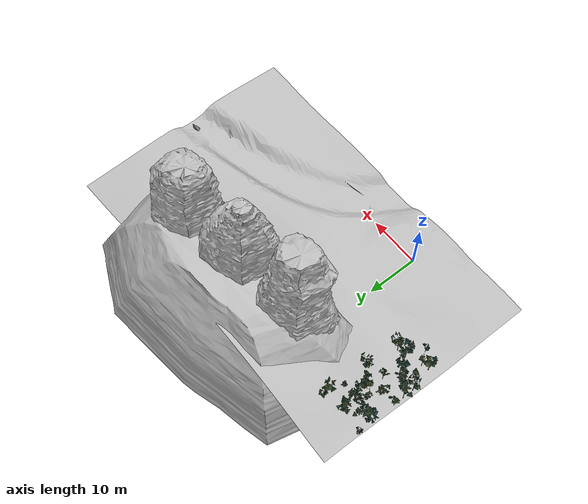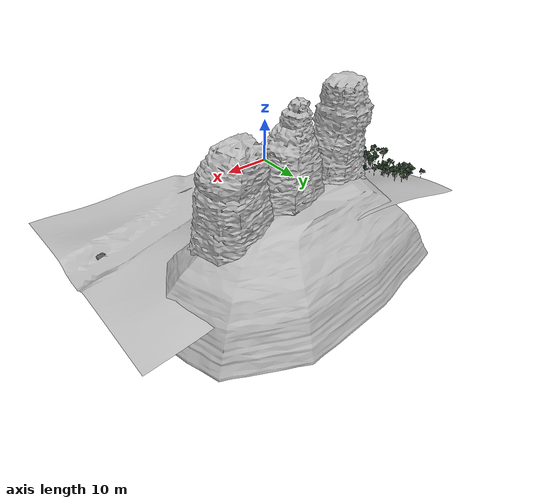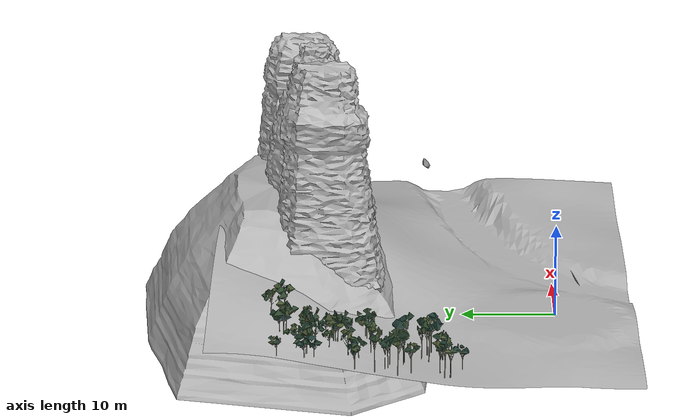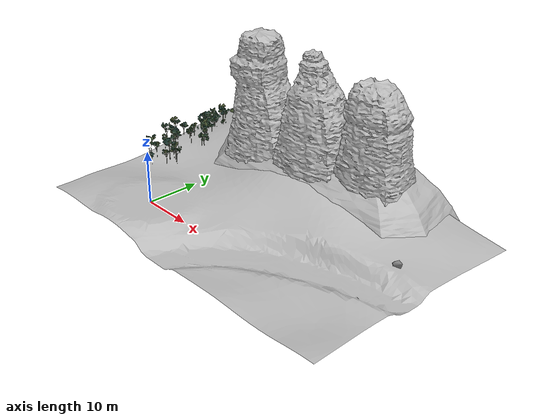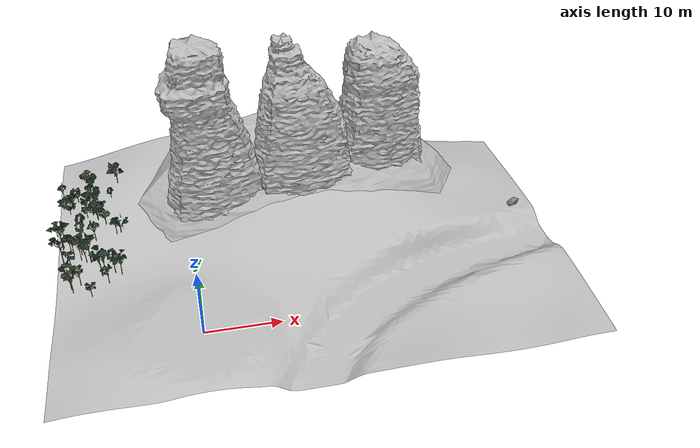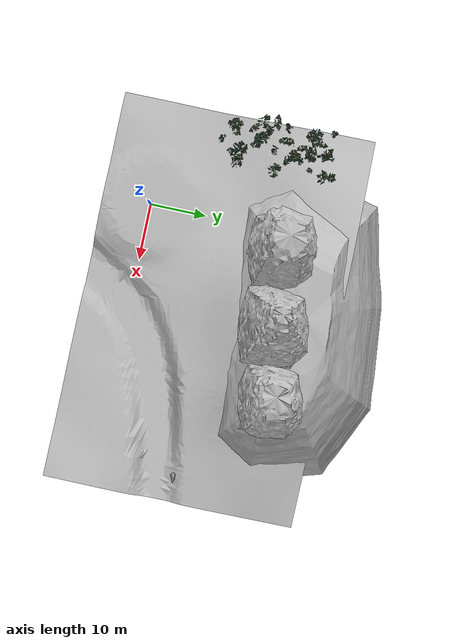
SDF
<sdf version="1.8">
 <model name="blue_mountains">
  <static>true</static>
  <link name="landscape_0">
   <visual name="visual">
    <geometry>
     <mesh><uri>model://blue_mountains/meshes/0000_jamison_valley_forest_terrain.dae</uri></mesh>
    </geometry>
    <cast_shadows>false</cast_shadows>
   </visual>
   <collision name="collision">
    <geometry>
     <mesh><uri>model://blue_mountains/meshes/0000_jamison_valley_forest_terrain.dae</uri></mesh>
    </geometry>
   </collision>
  </link>
  <link name="landscape_1">
   <visual name="visual">
    <geometry>
     <mesh><uri>model://blue_mountains/meshes/0001_01_meehni_irregular_stepped_summit.dae</uri></mesh>
    </geometry>
    <cast_shadows>false</cast_shadows>
   </visual>
   <collision name="collision">
    <geometry>
     <mesh><uri>model://blue_mountains/meshes/0001_01_meehni_irregular_stepped_summit.dae</uri></mesh>
    </geometry>
   </collision>
  </link>
  <link name="landscape_2">
   <visual name="visual">
    <geometry>
     <mesh><uri>model://blue_mountains/meshes/0002_02_wimlah_tapered_fractured_buttress.dae</uri></mesh>
    </geometry>
    <cast_shadows>false</cast_shadows>
   </visual>
   <collision name="collision">
    <geometry>
     <mesh><uri>model://blue_mountains/meshes/0002_02_wimlah_tapered_fractured_buttress.dae</uri></mesh>
    </geometry>
   </collision>
  </link>
  <link name="landscape_3">
   <visual name="visual">
    <geometry>
     <mesh><uri>model://blue_mountains/meshes/0003_03_gunnedoo_broad_weathered_crown.dae</uri></mesh>
    </geometry>
    <cast_shadows>false</cast_shadows>
   </visual>
   <collision name="collision">
    <geometry>
     <mesh><uri>model://blue_mountains/meshes/0003_03_gunnedoo_broad_weathered_crown.dae</uri></mesh>
    </geometry>
   </collision>
  </link>
  <link name="landscape_4">
   <visual name="visual">
    <geometry><mesh><uri>model://blue_mountains/meshes/0004_continuous_sandstone_spur.dae</uri></mesh></geometry>
    <cast_shadows>false</cast_shadows>
   </visual>
   <collision name="collision">
    <geometry><mesh><uri>model://blue_mountains/meshes/0004_continuous_sandstone_spur.dae</uri></mesh></geometry>
   </collision>
  </link>
  <link name="forest_18_21">
   <collision name="tree_5_trunk">
    <pose>-11.00735 13.69356 0.98007 0 0 1.931423</pose>
    <geometry><cylinder><radius>0.0527128</radius><length>3.376789</length></cylinder></geometry>
   </collision>
   <collision name="plant_5_crown_0">
    <pose>-10.99991 13.67383 -0.7083244 0 0 1.931423</pose>
    <geometry>
     <mesh>
      <uri>model://blue_mountains/meshes/canopy_0_0.dae</uri>
      <scale>0.2108512 0.2108512 0.2490363</scale>
     </mesh>
    </geometry>
   </collision>
   <collision name="plant_5_crown_1">
    <pose>-10.99991 13.67383 -0.7083244 0 0 1.931423</pose>
    <geometry>
     <mesh>
      <uri>model://blue_mountains/meshes/canopy_0_1.dae</uri>
      <scale>0.2108512 0.2108512 0.2490363</scale>
     </mesh>
    </geometry>
   </collision>
   <collision name="tree_11_trunk">
    <pose>-16.63338 17.70447 1.323882 0 0 1.766553</pose>
    <geometry><cylinder><radius>0.04915057</radius><length>2.743409</length></cylinder></geometry>
   </collision>
   <collision name="plant_11_crown_0">
    <pose>-16.62955 17.68518 -0.04782271 0 0 1.766553</pose>
    <geometry>
     <mesh>
      <uri>model://blue_mountains/meshes/canopy_4_0.dae</uri>
      <scale>0.1966023 0.1966023 0.2044297</scale>
     </mesh>
    </geometry>
   </collision>
   <collision name="plant_11_crown_1">
    <pose>-16.62955 17.68518 -0.04782271 0 0 1.766553</pose>
    <geometry>
     <mesh>
      <uri>model://blue_mountains/meshes/canopy_4_1.dae</uri>
      <scale>0.1966023 0.1966023 0.2044297</scale>
     </mesh>
    </geometry>
   </collision>
   <collision name="tree_13_trunk">
    <pose>-12.75313 13.44406 1.270675 0 0 -1.84723</pose>
    <geometry><cylinder><radius>0.07301863</radius><length>4.077318</length></cylinder></geometry>
   </collision>
   <collision name="plant_13_crown_0">
    <pose>-12.74516 13.47215 -0.7679834 0 0 -1.84723</pose>
    <geometry>
     <mesh>
      <uri>model://blue_mountains/meshes/canopy_4_0.dae</uri>
      <scale>0.2920745 0.2920745 0.3038282</scale>
     </mesh>
    </geometry>
   </collision>
   <collision name="plant_13_crown_1">
    <pose>-12.74516 13.47215 -0.7679834 0 0 -1.84723</pose>
    <geometry>
     <mesh>
      <uri>model://blue_mountains/meshes/canopy_4_1.dae</uri>
      <scale>0.2920745 0.2920745 0.3038282</scale>
     </mesh>
    </geometry>
   </collision>
   <collision name="tree_22_trunk">
    <pose>-15.59381 16.658 1.376622 0 0 -0.1817148</pose>
    <geometry><cylinder><radius>0.05085616</radius><length>3.163726</length></cylinder></geometry>
   </collision>
   <collision name="plant_22_crown_0">
    <pose>-15.61381 16.66167 -0.2052405 0 0 -0.1817148</pose>
    <geometry>
     <mesh>
      <uri>model://blue_mountains/meshes/canopy_0_0.dae</uri>
      <scale>0.2034246 0.2034246 0.233323</scale>
     </mesh>
    </geometry>
   </collision>
   <collision name="plant_22_crown_1">
    <pose>-15.61381 16.66167 -0.2052405 0 0 -0.1817148</pose>
    <geometry>
     <mesh>
      <uri>model://blue_mountains/meshes/canopy_0_1.dae</uri>
      <scale>0.2034246 0.2034246 0.233323</scale>
     </mesh>
    </geometry>
   </collision>
   <collision name="tree_100_trunk">
    <pose>-13.5845 19.50853 1.972437 0 0 1.797339</pose>
    <geometry><cylinder><radius>0.04786842</radius><length>2.822321</length></cylinder></geometry>
   </collision>
   <collision name="plant_100_crown_0">
    <pose>-13.5802 19.48987 0.5612764 0 0 1.797339</pose>
    <geometry>
     <mesh>
      <uri>model://blue_mountains/meshes/canopy_5_0.dae</uri>
      <scale>0.1914737 0.1914737 0.2121385</scale>
     </mesh>
    </geometry>
   </collision>
   <collision name="plant_100_crown_1">
    <pose>-13.5802 19.48987 0.5612764 0 0 1.797339</pose>
    <geometry>
     <mesh>
      <uri>model://blue_mountains/meshes/canopy_5_1.dae</uri>
      <scale>0.1914737 0.1914737 0.2121385</scale>
     </mesh>
    </geometry>
   </collision>
   <collision name="tree_114_trunk">
    <pose>-14.27402 16.0746 1.862754 0 0 1.929567</pose>
    <geometry><cylinder><radius>0.07051298</radius><length>4.326829</length></cylinder></geometry>
   </collision>
   <collision name="plant_114_crown_0">
    <pose>-14.26411 16.04819 -0.3006608 0 0 1.929567</pose>
    <geometry>
     <mesh>
      <uri>model://blue_mountains/meshes/canopy_4_0.dae</uri>
      <scale>0.2820519 0.2820519 0.3224209</scale>
     </mesh>
    </geometry>
   </collision>
   <collision name="plant_114_crown_1">
    <pose>-14.26411 16.04819 -0.3006608 0 0 1.929567</pose>
    <geometry>
     <mesh>
      <uri>model://blue_mountains/meshes/canopy_4_1.dae</uri>
      <scale>0.2820519 0.2820519 0.3224209</scale>
     </mesh>
    </geometry>
   </collision>
   <collision name="tree_118_trunk">
    <pose>-18.02493 16.63118 1.625535 0 0 -1.044839</pose>
    <geometry><cylinder><radius>0.07135749</radius><length>3.844661</length></cylinder></geometry>
   </collision>
   <collision name="plant_118_crown_0">
    <pose>-18.03926 16.65586 -0.2967958 0 0 -1.044839</pose>
    <geometry>
     <mesh>
      <uri>model://blue_mountains/meshes/canopy_2_0.dae</uri>
      <scale>0.2854299 0.2854299 0.2828724</scale>
     </mesh>
    </geometry>
   </collision>
   <collision name="plant_118_crown_1">
    <pose>-18.03926 16.65586 -0.2967958 0 0 -1.044839</pose>
    <geometry>
     <mesh>
      <uri>model://blue_mountains/meshes/canopy_2_1.dae</uri>
      <scale>0.2854299 0.2854299 0.2828724</scale>
     </mesh>
    </geometry>
   </collision>
   <collision name="tree_123_trunk">
    <pose>-15.54227 17.51189 1.175307 0 0 -0.7858084</pose>
    <geometry><cylinder><radius>0.04894487</radius><length>2.409598</length></cylinder></geometry>
   </collision>
   <collision name="plant_123_crown_0">
    <pose>-15.5561 17.52574 -0.02949238 0 0 -0.7858084</pose>
    <geometry>
     <mesh>
      <uri>model://blue_mountains/meshes/canopy_6_0.dae</uri>
      <scale>0.1957795 0.1957795 0.1776167</scale>
     </mesh>
    </geometry>
   </collision>
   <collision name="plant_123_crown_1">
    <pose>-15.5561 17.52574 -0.02949238 0 0 -0.7858084</pose>
    <geometry>
     <mesh>
      <uri>model://blue_mountains/meshes/canopy_6_1.dae</uri>
      <scale>0.1957795 0.1957795 0.1776167</scale>
     </mesh>
    </geometry>
   </collision>
   <collision name="tree_130_trunk">
    <pose>-16.96412 17.9592 1.435838 0 0 -2.331105</pose>
    <geometry><cylinder><radius>0.04494899</radius><length>2.894845</length></cylinder></geometry>
   </collision>
   <collision name="plant_130_crown_0">
    <pose>-16.95173 17.97223 -0.01158476 0 0 -2.331105</pose>
    <geometry>
     <mesh><uri>model://blue_mountains/meshes/canopy_3_0.dae</uri><scale>0.179796 0.179796 0.2152183</scale></mesh>
    </geometry>
   </collision>
   <collision name="plant_130_crown_1">
    <pose>-16.95173 17.97223 -0.01158476 0 0 -2.331105</pose>
    <geometry>
     <mesh><uri>model://blue_mountains/meshes/canopy_3_1.dae</uri><scale>0.179796 0.179796 0.2152183</scale></mesh>
    </geometry>
   </collision>
   <collision name="tree_199_trunk">
    <pose>-14.88543 16.10718 1.106355 0 0 -2.332534</pose>
    <geometry><cylinder><radius>0.04410965</radius><length>2.805242</length></cylinder></geometry>
   </collision>
   <collision name="plant_199_crown_0">
    <pose>-14.87326 16.11995 -0.2962656 0 0 -2.332534</pose>
    <geometry>
     <mesh>
      <uri>model://blue_mountains/meshes/canopy_5_0.dae</uri>
      <scale>0.1764386 0.1764386 0.2108548</scale>
     </mesh>
    </geometry>
   </collision>
   <collision name="plant_199_crown_1">
    <pose>-14.87326 16.11995 -0.2962656 0 0 -2.332534</pose>
    <geometry>
     <mesh>
      <uri>model://blue_mountains/meshes/canopy_5_1.dae</uri>
      <scale>0.1764386 0.1764386 0.2108548</scale>
     </mesh>
    </geometry>
   </collision>
   <collision name="tree_253_trunk">
    <pose>-14.05662 10.01314 -0.1940399 0 0 -1.157318</pose>
    <geometry><cylinder><radius>0.04042882</radius><length>2.143582</length></cylinder></geometry>
   </collision>
   <collision name="plant_253_crown_0">
    <pose>-14.06312 10.02795 -1.265831 0 0 -1.157318</pose>
    <geometry>
     <mesh>
      <uri>model://blue_mountains/meshes/canopy_4_0.dae</uri>
      <scale>0.1617153 0.1617153 0.1597326</scale>
     </mesh>
    </geometry>
   </collision>
   <collision name="plant_253_crown_1">
    <pose>-14.06312 10.02795 -1.265831 0 0 -1.157318</pose>
    <geometry>
     <mesh>
      <uri>model://blue_mountains/meshes/canopy_4_1.dae</uri>
      <scale>0.1617153 0.1617153 0.1597326</scale>
     </mesh>
    </geometry>
   </collision>
   <collision name="tree_274_trunk">
    <pose>-15.56105 12.33841 0.4961344 0 0 0.3857232</pose>
    <geometry><cylinder><radius>0.05898833</radius><length>2.87374</length></cylinder></geometry>
   </collision>
   <collision name="plant_274_crown_0">
    <pose>-15.58292 12.32953 -0.9407356 0 0 0.3857232</pose>
    <geometry>
     <mesh>
      <uri>model://blue_mountains/meshes/canopy_7_0.dae</uri>
      <scale>0.2359533 0.2359533 0.216066</scale>
     </mesh>
    </geometry>
   </collision>
   <collision name="plant_274_crown_1">
    <pose>-15.58292 12.32953 -0.9407356 0 0 0.3857232</pose>
    <geometry>
     <mesh>
      <uri>model://blue_mountains/meshes/canopy_7_1.dae</uri>
      <scale>0.2359533 0.2359533 0.216066</scale>
     </mesh>
    </geometry>
   </collision>
   <collision name="tree_277_trunk">
    <pose>-10.09732 13.25678 0.8020996 0 0 -0.09953434</pose>
    <geometry><cylinder><radius>0.06551166</radius><length>3.086385</length></cylinder></geometry>
   </collision>
   <collision name="plant_277_crown_0">
    <pose>-10.12339 13.25938 -0.7410932 0 0 -0.09953434</pose>
    <geometry>
     <mesh>
      <uri>model://blue_mountains/meshes/canopy_2_0.dae</uri>
      <scale>0.2620466 0.2620466 0.227082</scale>
     </mesh>
    </geometry>
   </collision>
   <collision name="plant_277_crown_1">
    <pose>-10.12339 13.25938 -0.7410932 0 0 -0.09953434</pose>
    <geometry>
     <mesh>
      <uri>model://blue_mountains/meshes/canopy_2_1.dae</uri>
      <scale>0.2620466 0.2620466 0.227082</scale>
     </mesh>
    </geometry>
   </collision>
   <collision name="tree_339_trunk">
    <pose>-18.12704 19.02719 2.063982 0 0 0.9307255</pose>
    <geometry><cylinder><radius>0.06879348</radius><length>3.946659</length></cylinder></geometry>
   </collision>
   <collision name="plant_339_crown_0">
    <pose>-18.14347 19.00512 0.0906527 0 0 0.9307255</pose>
    <geometry>
     <mesh>
      <uri>model://blue_mountains/meshes/canopy_8_0.dae</uri>
      <scale>0.2751739 0.2751739 0.2936668</scale>
     </mesh>
    </geometry>
   </collision>
   <collision name="plant_339_crown_1">
    <pose>-18.14347 19.00512 0.0906527 0 0 0.9307255</pose>
    <geometry>
     <mesh>
      <uri>model://blue_mountains/meshes/canopy_8_1.dae</uri>
      <scale>0.2751739 0.2751739 0.2936668</scale>
     </mesh>
    </geometry>
   </collision>
   <collision name="tree_340_trunk">
    <pose>-16.79424 11.82724 0.8433991 0 0 -1.105317</pose>
    <geometry><cylinder><radius>0.06814528</radius><length>3.702179</length></cylinder></geometry>
   </collision>
   <collision name="plant_340_crown_0">
    <pose>-16.80647 11.85159 -1.00769 0 0 -1.105317</pose>
    <geometry>
     <mesh>
      <uri>model://blue_mountains/meshes/canopy_1_0.dae</uri>
      <scale>0.2725811 0.2725811 0.2734459</scale>
     </mesh>
    </geometry>
   </collision>
   <collision name="plant_340_crown_1">
    <pose>-16.80647 11.85159 -1.00769 0 0 -1.105317</pose>
    <geometry>
     <mesh>
      <uri>model://blue_mountains/meshes/canopy_1_1.dae</uri>
      <scale>0.2725811 0.2725811 0.2734459</scale>
     </mesh>
    </geometry>
   </collision>
   <collision name="tree_392_trunk">
    <pose>-16.91099 15.29932 0.8320815 0 0 -3.098106</pose>
    <geometry><cylinder><radius>0.05667524</radius><length>2.626257</length></cylinder></geometry>
   </collision>
   <collision name="plant_392_crown_0">
    <pose>-16.88834 15.3003 -0.4810469 0 0 -3.098106</pose>
    <geometry>
     <mesh><uri>model://blue_mountains/meshes/canopy_8_0.dae</uri><scale>0.226701 0.226701 0.195417</scale></mesh>
    </geometry>
   </collision>
   <collision name="plant_392_crown_1">
    <pose>-16.88834 15.3003 -0.4810469 0 0 -3.098106</pose>
    <geometry>
     <mesh><uri>model://blue_mountains/meshes/canopy_8_1.dae</uri><scale>0.226701 0.226701 0.195417</scale></mesh>
    </geometry>
   </collision>
   <collision name="tree_397_trunk">
    <pose>-10.64215 19.94457 2.070035 0 0 -1.712195</pose>
    <geometry><cylinder><radius>0.0432395</radius><length>2.207157</length></cylinder></geometry>
   </collision>
   <collision name="plant_397_crown_0">
    <pose>-10.63971 19.96169 0.9664569 0 0 -1.712195</pose>
    <geometry>
     <mesh><uri>model://blue_mountains/meshes/canopy_5_0.dae</uri><scale>0.172958 0.172958 0.1659</scale></mesh>
    </geometry>
   </collision>
   <collision name="plant_397_crown_1">
    <pose>-10.63971 19.96169 0.9664569 0 0 -1.712195</pose>
    <geometry>
     <mesh><uri>model://blue_mountains/meshes/canopy_5_1.dae</uri><scale>0.172958 0.172958 0.1659</scale></mesh>
    </geometry>
   </collision>
   <collision name="tree_406_trunk">
    <pose>-16.53369 11.26642 0.4432319 0 0 -0.08879216</pose>
    <geometry><cylinder><radius>0.06109959</radius><length>3.02687</length></cylinder></geometry>
   </collision>
   <collision name="plant_406_crown_0">
    <pose>-16.55803 11.26859 -1.070203 0 0 -0.08879216</pose>
    <geometry>
     <mesh>
      <uri>model://blue_mountains/meshes/canopy_1_0.dae</uri>
      <scale>0.2443984 0.2443984 0.2235671</scale>
     </mesh>
    </geometry>
   </collision>
   <collision name="plant_406_crown_1">
    <pose>-16.55803 11.26859 -1.070203 0 0 -0.08879216</pose>
    <geometry>
     <mesh>
      <uri>model://blue_mountains/meshes/canopy_1_1.dae</uri>
      <scale>0.2443984 0.2443984 0.2235671</scale>
     </mesh>
    </geometry>
   </collision>
   <collision name="tree_424_trunk">
    <pose>-12.38895 14.22952 0.8773811 0 0 -1.31463</pose>
    <geometry><cylinder><radius>0.04897507</radius><length>3.026367</length></cylinder></geometry>
   </collision>
   <collision name="plant_424_crown_0">
    <pose>-12.39392 14.24847 -0.6358025 0 0 -1.31463</pose>
    <geometry>
     <mesh>
      <uri>model://blue_mountains/meshes/canopy_6_0.dae</uri>
      <scale>0.1959003 0.1959003 0.2230801</scale>
     </mesh>
    </geometry>
   </collision>
   <collision name="plant_424_crown_1">
    <pose>-12.39392 14.24847 -0.6358025 0 0 -1.31463</pose>
    <geometry>
     <mesh>
      <uri>model://blue_mountains/meshes/canopy_6_1.dae</uri>
      <scale>0.1959003 0.1959003 0.2230801</scale>
     </mesh>
    </geometry>
   </collision>
   <collision name="tree_425_trunk">
    <pose>-11.83638 12.0439 0.3670479 0 0 -0.5802114</pose>
    <geometry><cylinder><radius>0.05030619</radius><length>2.597305</length></cylinder></geometry>
   </collision>
   <collision name="plant_425_crown_0">
    <pose>-11.85321 12.05493 -0.9316049 0 0 -0.5802114</pose>
    <geometry>
     <mesh>
      <uri>model://blue_mountains/meshes/canopy_5_0.dae</uri>
      <scale>0.2012248 0.2012248 0.1952253</scale>
     </mesh>
    </geometry>
   </collision>
   <collision name="plant_425_crown_1">
    <pose>-11.85321 12.05493 -0.9316049 0 0 -0.5802114</pose>
    <geometry>
     <mesh>
      <uri>model://blue_mountains/meshes/canopy_5_1.dae</uri>
      <scale>0.2012248 0.2012248 0.1952253</scale>
     </mesh>
    </geometry>
   </collision>
   <visual name="forest_visual">
    <geometry><mesh><uri>model://blue_mountains/meshes/forest_18_21.dae</uri></mesh></geometry>
    <cast_shadows>false</cast_shadows>
   </visual>
  </link>
  <link name="forest_18_22">
   <collision name="tree_6_trunk">
    <pose>-13.23552 23.16154 3.227167 0 0 1.086585</pose>
    <geometry><cylinder><radius>0.06129941</radius><length>3.146669</length></cylinder></geometry>
   </collision>
   <collision name="plant_6_crown_0">
    <pose>-13.24693 23.13984 1.653832 0 0 1.086585</pose>
    <geometry>
     <mesh>
      <uri>model://blue_mountains/meshes/canopy_1_0.dae</uri>
      <scale>0.2451976 0.2451976 0.2324156</scale>
     </mesh>
    </geometry>
   </collision>
   <collision name="plant_6_crown_1">
    <pose>-13.24693 23.13984 1.653832 0 0 1.086585</pose>
    <geometry>
     <mesh>
      <uri>model://blue_mountains/meshes/canopy_1_1.dae</uri>
      <scale>0.2451976 0.2451976 0.2324156</scale>
     </mesh>
    </geometry>
   </collision>
   <collision name="tree_35_trunk">
    <pose>-13.26212 22.8935 3.58852 0 0 -2.274427</pose>
    <geometry><cylinder><radius>0.06512813</radius><length>4.001968</length></cylinder></geometry>
   </collision>
   <collision name="plant_35_crown_0">
    <pose>-13.24526 22.91337 1.587536 0 0 -2.274427</pose>
    <geometry>
     <mesh>
      <uri>model://blue_mountains/meshes/canopy_2_0.dae</uri>
      <scale>0.2605125 0.2605125 0.2944463</scale>
     </mesh>
    </geometry>
   </collision>
   <collision name="plant_35_crown_1">
    <pose>-13.24526 22.91337 1.587536 0 0 -2.274427</pose>
    <geometry>
     <mesh>
      <uri>model://blue_mountains/meshes/canopy_2_1.dae</uri>
      <scale>0.2605125 0.2605125 0.2944463</scale>
     </mesh>
    </geometry>
   </collision>
   <collision name="tree_103_trunk">
    <pose>-10.05428 20.07703 2.745684 0 0 -1.383348</pose>
    <geometry><cylinder><radius>0.07215569</radius><length>3.350216</length></cylinder></geometry>
   </collision>
   <collision name="plant_103_crown_0">
    <pose>-10.05965 20.10539 1.070576 0 0 -1.383348</pose>
    <geometry>
     <mesh>
      <uri>model://blue_mountains/meshes/canopy_2_0.dae</uri>
      <scale>0.2886228 0.2886228 0.2464934</scale>
     </mesh>
    </geometry>
   </collision>
   <collision name="plant_103_crown_1">
    <pose>-10.05965 20.10539 1.070576 0 0 -1.383348</pose>
    <geometry>
     <mesh>
      <uri>model://blue_mountains/meshes/canopy_2_1.dae</uri>
      <scale>0.2886228 0.2886228 0.2464934</scale>
     </mesh>
    </geometry>
   </collision>
   <collision name="tree_128_trunk">
    <pose>-13.99477 28.87506 4.410375 0 0 -2.361214</pose>
    <geometry><cylinder><radius>0.05561356</radius><length>3.016801</length></cylinder></geometry>
   </collision>
   <collision name="plant_128_crown_0">
    <pose>-13.97896 28.89071 2.901975 0 0 -2.361214</pose>
    <geometry>
     <mesh>
      <uri>model://blue_mountains/meshes/canopy_4_0.dae</uri>
      <scale>0.2224543 0.2224543 0.224802</scale>
     </mesh>
    </geometry>
   </collision>
   <collision name="plant_128_crown_1">
    <pose>-13.97896 28.89071 2.901975 0 0 -2.361214</pose>
    <geometry>
     <mesh>
      <uri>model://blue_mountains/meshes/canopy_4_1.dae</uri>
      <scale>0.2224543 0.2224543 0.224802</scale>
     </mesh>
    </geometry>
   </collision>
   <collision name="tree_166_trunk">
    <pose>-14.25775 28.41808 4.947151 0 0 0.2555893</pose>
    <geometry><cylinder><radius>0.0715662</radius><length>4.432418</length></cylinder></geometry>
   </collision>
   <collision name="plant_166_crown_0">
    <pose>-14.28545 28.41084 2.730942 0 0 0.2555893</pose>
    <geometry>
     <mesh>
      <uri>model://blue_mountains/meshes/canopy_8_0.dae</uri>
      <scale>0.2862648 0.2862648 0.3298116</scale>
     </mesh>
    </geometry>
   </collision>
   <collision name="plant_166_crown_1">
    <pose>-14.28545 28.41084 2.730942 0 0 0.2555893</pose>
    <geometry>
     <mesh>
      <uri>model://blue_mountains/meshes/canopy_8_1.dae</uri>
      <scale>0.2862648 0.2862648 0.3298116</scale>
     </mesh>
    </geometry>
   </collision>
   <collision name="tree_168_trunk">
    <pose>-13.32814 23.32386 3.546753 0 0 -2.117352</pose>
    <geometry><cylinder><radius>0.06931265</radius><length>3.68923</length></cylinder></geometry>
   </collision>
   <collision name="plant_168_crown_0">
    <pose>-13.31373 23.34755 1.702138 0 0 -2.117352</pose>
    <geometry>
     <mesh>
      <uri>model://blue_mountains/meshes/canopy_0_0.dae</uri>
      <scale>0.2772506 0.2772506 0.2720786</scale>
     </mesh>
    </geometry>
   </collision>
   <collision name="plant_168_crown_1">
    <pose>-13.31373 23.34755 1.702138 0 0 -2.117352</pose>
    <geometry>
     <mesh>
      <uri>model://blue_mountains/meshes/canopy_0_1.dae</uri>
      <scale>0.2772506 0.2772506 0.2720786</scale>
     </mesh>
    </geometry>
   </collision>
   <collision name="tree_179_trunk">
    <pose>-17.77202 26.22557 2.968533 0 0 -3.065258</pose>
    <geometry><cylinder><radius>0.06453053</radius><length>3.002123</length></cylinder></geometry>
   </collision>
   <collision name="plant_179_crown_0">
    <pose>-17.74629 26.22754 1.467471 0 0 -3.065258</pose>
    <geometry>
     <mesh>
      <uri>model://blue_mountains/meshes/canopy_4_0.dae</uri>
      <scale>0.2581221 0.2581221 0.2237082</scale>
     </mesh>
    </geometry>
   </collision>
   <collision name="plant_179_crown_1">
    <pose>-17.74629 26.22754 1.467471 0 0 -3.065258</pose>
    <geometry>
     <mesh>
      <uri>model://blue_mountains/meshes/canopy_4_1.dae</uri>
      <scale>0.2581221 0.2581221 0.2237082</scale>
     </mesh>
    </geometry>
   </collision>
   <collision name="tree_200_trunk">
    <pose>-10.23324 28.53306 5.850224 0 0 0.6221859</pose>
    <geometry><cylinder><radius>0.06943553</radius><length>4.177232</length></cylinder></geometry>
   </collision>
   <collision name="plant_200_crown_0">
    <pose>-10.25581 28.51687 3.761608 0 0 0.6221859</pose>
    <geometry>
     <mesh>
      <uri>model://blue_mountains/meshes/canopy_3_0.dae</uri>
      <scale>0.2777421 0.2777421 0.3105578</scale>
     </mesh>
    </geometry>
   </collision>
   <collision name="plant_200_crown_1">
    <pose>-10.25581 28.51687 3.761608 0 0 0.6221859</pose>
    <geometry>
     <mesh>
      <uri>model://blue_mountains/meshes/canopy_3_1.dae</uri>
      <scale>0.2777421 0.2777421 0.3105578</scale>
     </mesh>
    </geometry>
   </collision>
   <collision name="tree_247_trunk">
    <pose>-18.1595 21.05126 2.18634 0 0 -0.7197788</pose>
    <geometry><cylinder><radius>0.05604642</radius><length>3.476928</length></cylinder></geometry>
   </collision>
   <collision name="plant_247_crown_0">
    <pose>-18.17636 21.06603 0.4478757 0 0 -0.7197788</pose>
    <geometry>
     <mesh>
      <uri>model://blue_mountains/meshes/canopy_6_0.dae</uri>
      <scale>0.2241857 0.2241857 0.2562919</scale>
     </mesh>
    </geometry>
   </collision>
   <collision name="plant_247_crown_1">
    <pose>-18.17636 21.06603 0.4478757 0 0 -0.7197788</pose>
    <geometry>
     <mesh>
      <uri>model://blue_mountains/meshes/canopy_6_1.dae</uri>
      <scale>0.2241857 0.2241857 0.2562919</scale>
     </mesh>
    </geometry>
   </collision>
   <collision name="tree_249_trunk">
    <pose>-14.32852 26.02061 3.662353 0 0 0.9239057</pose>
    <geometry><cylinder><radius>0.05882859</radius><length>2.962593</length></cylinder></geometry>
   </collision>
   <collision name="plant_249_crown_0">
    <pose>-14.34271 26.00183 2.181056 0 0 0.9239057</pose>
    <geometry>
     <mesh>
      <uri>model://blue_mountains/meshes/canopy_5_0.dae</uri>
      <scale>0.2353144 0.2353144 0.222682</scale>
     </mesh>
    </geometry>
   </collision>
   <collision name="plant_249_crown_1">
    <pose>-14.34271 26.00183 2.181056 0 0 0.9239057</pose>
    <geometry>
     <mesh>
      <uri>model://blue_mountains/meshes/canopy_5_1.dae</uri>
      <scale>0.2353144 0.2353144 0.222682</scale>
     </mesh>
    </geometry>
   </collision>
   <collision name="tree_255_trunk">
    <pose>-18.37329 28.99916 3.186844 0 0 -0.7816474</pose>
    <geometry><cylinder><radius>0.04322198</radius><length>2.658526</length></cylinder></geometry>
   </collision>
   <collision name="plant_255_crown_0">
    <pose>-18.38556 29.01134 1.857581 0 0 -0.7816474</pose>
    <geometry>
     <mesh>
      <uri>model://blue_mountains/meshes/canopy_1_0.dae</uri>
      <scale>0.1728879 0.1728879 0.1963609</scale>
     </mesh>
    </geometry>
   </collision>
   <collision name="plant_255_crown_1">
    <pose>-18.38556 29.01134 1.857581 0 0 -0.7816474</pose>
    <geometry>
     <mesh>
      <uri>model://blue_mountains/meshes/canopy_1_1.dae</uri>
      <scale>0.1728879 0.1728879 0.1963609</scale>
     </mesh>
    </geometry>
   </collision>
   <collision name="tree_256_trunk">
    <pose>-13.75891 25.87571 4.315666 0 0 -3.019603</pose>
    <geometry><cylinder><radius>0.06227174</radius><length>4.027971</length></cylinder></geometry>
   </collision>
   <collision name="plant_256_crown_0">
    <pose>-13.73419 25.87874 2.301681 0 0 -3.019603</pose>
    <geometry>
     <mesh><uri>model://blue_mountains/meshes/canopy_2_0.dae</uri><scale>0.249087 0.249087 0.2963595</scale></mesh>
    </geometry>
   </collision>
   <collision name="plant_256_crown_1">
    <pose>-13.73419 25.87874 2.301681 0 0 -3.019603</pose>
    <geometry>
     <mesh><uri>model://blue_mountains/meshes/canopy_2_1.dae</uri><scale>0.249087 0.249087 0.2963595</scale></mesh>
    </geometry>
   </collision>
   <collision name="tree_275_trunk">
    <pose>-10.60712 29.88631 5.468616 0 0 -0.6983031</pose>
    <geometry><cylinder><radius>0.0587657</radius><length>3.139065</length></cylinder></geometry>
   </collision>
   <collision name="plant_275_crown_0">
    <pose>-10.62513 29.90143 3.899084 0 0 -0.6983031</pose>
    <geometry>
     <mesh>
      <uri>model://blue_mountains/meshes/canopy_0_0.dae</uri>
      <scale>0.2350628 0.2350628 0.2315043</scale>
     </mesh>
    </geometry>
   </collision>
   <collision name="plant_275_crown_1">
    <pose>-10.62513 29.90143 3.899084 0 0 -0.6983031</pose>
    <geometry>
     <mesh>
      <uri>model://blue_mountains/meshes/canopy_0_1.dae</uri>
      <scale>0.2350628 0.2350628 0.2315043</scale>
     </mesh>
    </geometry>
   </collision>
   <collision name="tree_289_trunk">
    <pose>-12.11327 21.89619 2.99883 0 0 1.424232</pose>
    <geometry><cylinder><radius>0.06164007</radius><length>3.109202</length></cylinder></geometry>
   </collision>
   <collision name="plant_289_crown_0">
    <pose>-12.11687 21.8718 1.444229 0 0 1.424232</pose>
    <geometry>
     <mesh>
      <uri>model://blue_mountains/meshes/canopy_6_0.dae</uri>
      <scale>0.2465603 0.2465603 0.229186</scale>
     </mesh>
    </geometry>
   </collision>
   <collision name="plant_289_crown_1">
    <pose>-12.11687 21.8718 1.444229 0 0 1.424232</pose>
    <geometry>
     <mesh>
      <uri>model://blue_mountains/meshes/canopy_6_1.dae</uri>
      <scale>0.2465603 0.2465603 0.229186</scale>
     </mesh>
    </geometry>
   </collision>
   <collision name="tree_314_trunk">
    <pose>-11.24043 26.14399 4.020075 0 0 1.877041</pose>
    <geometry><cylinder><radius>0.03591868</radius><length>2.111594</length></cylinder></geometry>
   </collision>
   <collision name="plant_314_crown_0">
    <pose>-11.2361 26.13029 2.964279 0 0 1.877041</pose>
    <geometry>
     <mesh>
      <uri>model://blue_mountains/meshes/canopy_0_0.dae</uri>
      <scale>0.1436747 0.1436747 0.1557288</scale>
     </mesh>
    </geometry>
   </collision>
   <collision name="plant_314_crown_1">
    <pose>-11.2361 26.13029 2.964279 0 0 1.877041</pose>
    <geometry>
     <mesh>
      <uri>model://blue_mountains/meshes/canopy_0_1.dae</uri>
      <scale>0.1436747 0.1436747 0.1557288</scale>
     </mesh>
    </geometry>
   </collision>
   <collision name="tree_322_trunk">
    <pose>-14.82544 25.12848 3.392789 0 0 0.565994</pose>
    <geometry><cylinder><radius>0.04916384</radius><length>3.089352</length></cylinder></geometry>
   </collision>
   <collision name="plant_322_crown_0">
    <pose>-14.84204 25.11793 1.848113 0 0 0.565994</pose>
    <geometry>
     <mesh>
      <uri>model://blue_mountains/meshes/canopy_2_0.dae</uri>
      <scale>0.1966554 0.1966554 0.2273002</scale>
     </mesh>
    </geometry>
   </collision>
   <collision name="plant_322_crown_1">
    <pose>-14.84204 25.11793 1.848113 0 0 0.565994</pose>
    <geometry>
     <mesh>
      <uri>model://blue_mountains/meshes/canopy_2_1.dae</uri>
      <scale>0.1966554 0.1966554 0.2273002</scale>
     </mesh>
    </geometry>
   </collision>
   <collision name="tree_330_trunk">
    <pose>-14.75879 23.72706 2.710481 0 0 -1.455609</pose>
    <geometry><cylinder><radius>0.0422786</radius><length>2.368268</length></cylinder></geometry>
   </collision>
   <collision name="plant_330_crown_0">
    <pose>-14.76074 23.74386 1.526347 0 0 -1.455609</pose>
    <geometry>
     <mesh>
      <uri>model://blue_mountains/meshes/canopy_7_0.dae</uri>
      <scale>0.1691144 0.1691144 0.1780614</scale>
     </mesh>
    </geometry>
   </collision>
   <collision name="plant_330_crown_1">
    <pose>-14.76074 23.74386 1.526347 0 0 -1.455609</pose>
    <geometry>
     <mesh>
      <uri>model://blue_mountains/meshes/canopy_7_1.dae</uri>
      <scale>0.1691144 0.1691144 0.1780614</scale>
     </mesh>
    </geometry>
   </collision>
   <collision name="tree_352_trunk">
    <pose>-17.24756 25.229 2.662511 0 0 -0.03826028</pose>
    <geometry><cylinder><radius>0.05256654</radius><length>2.608206</length></cylinder></geometry>
   </collision>
   <collision name="plant_352_crown_0">
    <pose>-17.26857 25.22981 1.358408 0 0 -0.03826028</pose>
    <geometry>
     <mesh>
      <uri>model://blue_mountains/meshes/canopy_4_0.dae</uri>
      <scale>0.2102662 0.2102662 0.1943548</scale>
     </mesh>
    </geometry>
   </collision>
   <collision name="plant_352_crown_1">
    <pose>-17.26857 25.22981 1.358408 0 0 -0.03826028</pose>
    <geometry>
     <mesh>
      <uri>model://blue_mountains/meshes/canopy_4_1.dae</uri>
      <scale>0.2102662 0.2102662 0.1943548</scale>
     </mesh>
    </geometry>
   </collision>
   <collision name="tree_362_trunk">
    <pose>-16.1319 27.0542 3.4872 0 0 -0.783893</pose>
    <geometry><cylinder><radius>0.05922301</radius><length>3.036693</length></cylinder></geometry>
   </collision>
   <collision name="plant_362_crown_0">
    <pose>-16.14867 27.07092 1.968853 0 0 -0.783893</pose>
    <geometry>
     <mesh>
      <uri>model://blue_mountains/meshes/canopy_8_0.dae</uri>
      <scale>0.2368921 0.2368921 0.2259572</scale>
     </mesh>
    </geometry>
   </collision>
   <collision name="plant_362_crown_1">
    <pose>-16.14867 27.07092 1.968853 0 0 -0.783893</pose>
    <geometry>
     <mesh>
      <uri>model://blue_mountains/meshes/canopy_8_1.dae</uri>
      <scale>0.2368921 0.2368921 0.2259572</scale>
     </mesh>
    </geometry>
   </collision>
   <collision name="tree_370_trunk">
    <pose>-16.8498 25.99246 3.526382 0 0 -1.049919</pose>
    <geometry><cylinder><radius>0.07256068</radius><length>3.865302</length></cylinder></geometry>
   </collision>
   <collision name="plant_370_crown_0">
    <pose>-16.86424 26.01763 1.593731 0 0 -1.049919</pose>
    <geometry>
     <mesh>
      <uri>model://blue_mountains/meshes/canopy_6_0.dae</uri>
      <scale>0.2902427 0.2902427 0.2849198</scale>
     </mesh>
    </geometry>
   </collision>
   <collision name="plant_370_crown_1">
    <pose>-16.86424 26.01763 1.593731 0 0 -1.049919</pose>
    <geometry>
     <mesh>
      <uri>model://blue_mountains/meshes/canopy_6_1.dae</uri>
      <scale>0.2902427 0.2902427 0.2849198</scale>
     </mesh>
    </geometry>
   </collision>
   <collision name="tree_385_trunk">
    <pose>-13.85138 28.1992 4.746692 0 0 -2.56241</pose>
    <geometry><cylinder><radius>0.06180942</radius><length>3.863184</length></cylinder></geometry>
   </collision>
   <collision name="plant_385_crown_0">
    <pose>-13.83069 28.21273 2.8151 0 0 -2.56241</pose>
    <geometry>
     <mesh>
      <uri>model://blue_mountains/meshes/canopy_6_0.dae</uri>
      <scale>0.2472377 0.2472377 0.2847637</scale>
     </mesh>
    </geometry>
   </collision>
   <collision name="plant_385_crown_1">
    <pose>-13.83069 28.21273 2.8151 0 0 -2.56241</pose>
    <geometry>
     <mesh>
      <uri>model://blue_mountains/meshes/canopy_6_1.dae</uri>
      <scale>0.2472377 0.2472377 0.2847637</scale>
     </mesh>
    </geometry>
   </collision>
   <collision name="tree_408_trunk">
    <pose>-12.63332 24.14122 3.316724 0 0 2.673759</pose>
    <geometry><cylinder><radius>0.04153046</radius><length>2.490542</length></cylinder></geometry>
   </collision>
   <collision name="plant_408_crown_0">
    <pose>-12.6185 24.13373 2.071453 0 0 2.673759</pose>
    <geometry>
     <mesh>
      <uri>model://blue_mountains/meshes/canopy_4_0.dae</uri>
      <scale>0.1661218 0.1661218 0.1855869</scale>
     </mesh>
    </geometry>
   </collision>
   <collision name="plant_408_crown_1">
    <pose>-12.6185 24.13373 2.071453 0 0 2.673759</pose>
    <geometry>
     <mesh>
      <uri>model://blue_mountains/meshes/canopy_4_1.dae</uri>
      <scale>0.1661218 0.1661218 0.1855869</scale>
     </mesh>
    </geometry>
   </collision>
   <collision name="tree_413_trunk">
    <pose>-15.62846 20.70969 1.997009 0 0 1.148515</pose>
    <geometry><cylinder><radius>0.04581356</radius><length>2.685189</length></cylinder></geometry>
   </collision>
   <collision name="plant_413_crown_0">
    <pose>-15.63597 20.69297 0.6544142 0 0 1.148515</pose>
    <geometry>
     <mesh>
      <uri>model://blue_mountains/meshes/canopy_2_0.dae</uri>
      <scale>0.1832542 0.1832542 0.1975638</scale>
     </mesh>
    </geometry>
   </collision>
   <collision name="plant_413_crown_1">
    <pose>-15.63597 20.69297 0.6544142 0 0 1.148515</pose>
    <geometry>
     <mesh>
      <uri>model://blue_mountains/meshes/canopy_2_1.dae</uri>
      <scale>0.1832542 0.1832542 0.1975638</scale>
     </mesh>
    </geometry>
   </collision>
   <collision name="tree_418_trunk">
    <pose>-15.51521 21.80905 2.662346 0 0 2.003514</pose>
    <geometry><cylinder><radius>0.05693726</radius><length>3.479904</length></cylinder></geometry>
   </collision>
   <collision name="plant_418_crown_0">
    <pose>-15.50566 21.78838 0.9223938 0 0 2.003514</pose>
    <geometry>
     <mesh><uri>model://blue_mountains/meshes/canopy_0_0.dae</uri><scale>0.227749 0.227749 0.2566409</scale></mesh>
    </geometry>
   </collision>
   <collision name="plant_418_crown_1">
    <pose>-15.50566 21.78838 0.9223938 0 0 2.003514</pose>
    <geometry>
     <mesh><uri>model://blue_mountains/meshes/canopy_0_1.dae</uri><scale>0.227749 0.227749 0.2566409</scale></mesh>
    </geometry>
   </collision>
   <collision name="tree_465_trunk">
    <pose>-13.22512 25.87656 3.88338 0 0 -2.579789</pose>
    <geometry><cylinder><radius>0.04856139</radius><length>2.898581</length></cylinder></geometry>
   </collision>
   <collision name="plant_465_crown_0">
    <pose>-13.20868 25.88691 2.434089 0 0 -2.579789</pose>
    <geometry>
     <mesh>
      <uri>model://blue_mountains/meshes/canopy_6_0.dae</uri>
      <scale>0.1942456 0.1942456 0.2136607</scale>
     </mesh>
    </geometry>
   </collision>
   <collision name="plant_465_crown_1">
    <pose>-13.20868 25.88691 2.434089 0 0 -2.579789</pose>
    <geometry>
     <mesh>
      <uri>model://blue_mountains/meshes/canopy_6_1.dae</uri>
      <scale>0.1942456 0.1942456 0.2136607</scale>
     </mesh>
    </geometry>
   </collision>
   <visual name="forest_visual">
    <geometry><mesh><uri>model://blue_mountains/meshes/forest_18_22.dae</uri></mesh></geometry>
    <cast_shadows>false</cast_shadows>
   </visual>
  </link>
  <link name="forest_24_21">
   <collision name="tree_7_trunk">
    <pose>46.3587 13.66385 0.07485123 0 0 -1.11061</pose>
    <geometry><cylinder><radius>0.05312383</radius><length>2.820946</length></cylinder></geometry>
   </collision>
   <collision name="plant_7_crown_0">
    <pose>46.34926 13.68289 -1.335622 0 0 -1.11061</pose>
    <geometry>
     <mesh>
      <uri>model://blue_mountains/meshes/canopy_2_0.dae</uri>
      <scale>0.2124953 0.2124953 0.2075521</scale>
     </mesh>
    </geometry>
   </collision>
   <collision name="plant_7_crown_1">
    <pose>46.34926 13.68289 -1.335622 0 0 -1.11061</pose>
    <geometry>
     <mesh>
      <uri>model://blue_mountains/meshes/canopy_2_1.dae</uri>
      <scale>0.2124953 0.2124953 0.2075521</scale>
     </mesh>
    </geometry>
   </collision>
   <collision name="tree_8_trunk">
    <pose>46.19441 14.05483 0.102525 0 0 -0.1081408</pose>
    <geometry><cylinder><radius>0.04052509</radius><length>2.385825</length></cylinder></geometry>
   </collision>
   <collision name="plant_8_crown_0">
    <pose>46.1783 14.05658 -1.090388 0 0 -0.1081408</pose>
    <geometry>
     <mesh>
      <uri>model://blue_mountains/meshes/canopy_3_0.dae</uri>
      <scale>0.1621003 0.1621003 0.177375</scale>
     </mesh>
    </geometry>
   </collision>
   <collision name="plant_8_crown_1">
    <pose>46.1783 14.05658 -1.090388 0 0 -0.1081408</pose>
    <geometry>
     <mesh>
      <uri>model://blue_mountains/meshes/canopy_3_1.dae</uri>
      <scale>0.1621003 0.1621003 0.177375</scale>
     </mesh>
    </geometry>
   </collision>
   <collision name="tree_54_trunk">
    <pose>45.72454 17.54652 1.240194 0 0 -1.332477</pose>
    <geometry><cylinder><radius>0.05559865</radius><length>2.951463</length></cylinder></geometry>
   </collision>
   <collision name="plant_54_crown_0">
    <pose>45.71929 17.56813 -0.2355371 0 0 -1.332477</pose>
    <geometry>
     <mesh>
      <uri>model://blue_mountains/meshes/canopy_8_0.dae</uri>
      <scale>0.2223946 0.2223946 0.2196153</scale>
     </mesh>
    </geometry>
   </collision>
   <collision name="plant_54_crown_1">
    <pose>45.71929 17.56813 -0.2355371 0 0 -1.332477</pose>
    <geometry>
     <mesh>
      <uri>model://blue_mountains/meshes/canopy_8_1.dae</uri>
      <scale>0.2223946 0.2223946 0.2196153</scale>
     </mesh>
    </geometry>
   </collision>
   <collision name="tree_78_trunk">
    <pose>44.56624 13.89745 0.8586943 0 0 -2.135587</pose>
    <geometry><cylinder><radius>0.06837151</radius><length>3.429785</length></cylinder></geometry>
   </collision>
   <collision name="plant_78_crown_0">
    <pose>44.58088 13.92055 -0.8561981 0 0 -2.135587</pose>
    <geometry>
     <mesh><uri>model://blue_mountains/meshes/canopy_4_0.dae</uri><scale>0.273486 0.273486 0.2555761</scale></mesh>
    </geometry>
   </collision>
   <collision name="plant_78_crown_1">
    <pose>44.58088 13.92055 -0.8561981 0 0 -2.135587</pose>
    <geometry>
     <mesh><uri>model://blue_mountains/meshes/canopy_4_1.dae</uri><scale>0.273486 0.273486 0.2555761</scale></mesh>
    </geometry>
   </collision>
   <collision name="tree_110_trunk">
    <pose>48.89273 16.79941 0.7739394 0 0 -3.105359</pose>
    <geometry><cylinder><radius>0.04096245</radius><length>2.633923</length></cylinder></geometry>
   </collision>
   <collision name="plant_110_crown_0">
    <pose>48.9091 16.80001 -0.5430219 0 0 -3.105359</pose>
    <geometry>
     <mesh>
      <uri>model://blue_mountains/meshes/canopy_2_0.dae</uri>
      <scale>0.1638498 0.1638498 0.1937919</scale>
     </mesh>
    </geometry>
   </collision>
   <collision name="plant_110_crown_1">
    <pose>48.9091 16.80001 -0.5430219 0 0 -3.105359</pose>
    <geometry>
     <mesh>
      <uri>model://blue_mountains/meshes/canopy_2_1.dae</uri>
      <scale>0.1638498 0.1638498 0.1937919</scale>
     </mesh>
    </geometry>
   </collision>
   <collision name="tree_120_trunk">
    <pose>41.16937 18.17884 2.346918 0 0 2.017286</pose>
    <geometry><cylinder><radius>0.06500119</radius><length>4.121044</length></cylinder></geometry>
   </collision>
   <collision name="plant_120_crown_0">
    <pose>41.1806 18.15539 0.2863963 0 0 2.017286</pose>
    <geometry>
     <mesh>
      <uri>model://blue_mountains/meshes/canopy_2_0.dae</uri>
      <scale>0.2600048 0.2600048 0.3032073</scale>
     </mesh>
    </geometry>
   </collision>
   <collision name="plant_120_crown_1">
    <pose>41.1806 18.15539 0.2863963 0 0 2.017286</pose>
    <geometry>
     <mesh>
      <uri>model://blue_mountains/meshes/canopy_2_1.dae</uri>
      <scale>0.2600048 0.2600048 0.3032073</scale>
     </mesh>
    </geometry>
   </collision>
   <collision name="tree_122_trunk">
    <pose>46.52799 15.7559 1.53373 0 0 1.848042</pose>
    <geometry><cylinder><radius>0.07008671</radius><length>3.55835</length></cylinder></geometry>
   </collision>
   <collision name="plant_122_crown_0">
    <pose>46.53567 15.72894 -0.2454453 0 0 1.848042</pose>
    <geometry>
     <mesh>
      <uri>model://blue_mountains/meshes/canopy_7_0.dae</uri>
      <scale>0.2803468 0.2803468 0.2675394</scale>
     </mesh>
    </geometry>
   </collision>
   <collision name="plant_122_crown_1">
    <pose>46.53567 15.72894 -0.2454453 0 0 1.848042</pose>
    <geometry>
     <mesh>
      <uri>model://blue_mountains/meshes/canopy_7_1.dae</uri>
      <scale>0.2803468 0.2803468 0.2675394</scale>
     </mesh>
    </geometry>
   </collision>
   <collision name="tree_146_trunk">
    <pose>44.27746 17.31761 1.56526 0 0 -0.4271353</pose>
    <geometry><cylinder><radius>0.05739984</radius><length>3.292759</length></cylinder></geometry>
   </collision>
   <collision name="plant_146_crown_0">
    <pose>44.25657 17.32712 -0.08111906 0 0 -0.4271353</pose>
    <geometry>
     <mesh>
      <uri>model://blue_mountains/meshes/canopy_0_0.dae</uri>
      <scale>0.2295993 0.2295993 0.2428391</scale>
     </mesh>
    </geometry>
   </collision>
   <collision name="plant_146_crown_1">
    <pose>44.25657 17.32712 -0.08111906 0 0 -0.4271353</pose>
    <geometry>
     <mesh>
      <uri>model://blue_mountains/meshes/canopy_0_1.dae</uri>
      <scale>0.2295993 0.2295993 0.2428391</scale>
     </mesh>
    </geometry>
   </collision>
   <collision name="tree_197_trunk">
    <pose>43.08169 16.14174 1.234888 0 0 0.88226</pose>
    <geometry><cylinder><radius>0.03907652</radius><length>2.360494</length></cylinder></geometry>
   </collision>
   <collision name="plant_197_crown_0">
    <pose>43.07176 16.12967 0.05464149 0 0 0.88226</pose>
    <geometry>
     <mesh>
      <uri>model://blue_mountains/meshes/canopy_6_0.dae</uri>
      <scale>0.1563061 0.1563061 0.1739971</scale>
     </mesh>
    </geometry>
   </collision>
   <collision name="plant_197_crown_1">
    <pose>43.07176 16.12967 0.05464149 0 0 0.88226</pose>
    <geometry>
     <mesh>
      <uri>model://blue_mountains/meshes/canopy_6_1.dae</uri>
      <scale>0.1563061 0.1563061 0.1739971</scale>
     </mesh>
    </geometry>
   </collision>
   <collision name="tree_209_trunk">
    <pose>41.70455 18.76741 1.893894 0 0 2.589705</pose>
    <geometry><cylinder><radius>0.05760239</radius><length>3.346543</length></cylinder></geometry>
   </collision>
   <collision name="plant_209_crown_0">
    <pose>41.72417 18.75533 0.2206228 0 0 2.589705</pose>
    <geometry>
     <mesh>
      <uri>model://blue_mountains/meshes/canopy_7_0.dae</uri>
      <scale>0.2304096 0.2304096 0.2516143</scale>
     </mesh>
    </geometry>
   </collision>
   <collision name="plant_209_crown_1">
    <pose>41.72417 18.75533 0.2206228 0 0 2.589705</pose>
    <geometry>
     <mesh>
      <uri>model://blue_mountains/meshes/canopy_7_1.dae</uri>
      <scale>0.2304096 0.2304096 0.2516143</scale>
     </mesh>
    </geometry>
   </collision>
   <collision name="tree_234_trunk">
    <pose>49.52663 15.26602 0.7170791 0 0 -1.43857</pose>
    <geometry><cylinder><radius>0.06612597</radius><length>3.160531</length></cylinder></geometry>
   </collision>
   <collision name="plant_234_crown_0">
    <pose>49.52314 15.29224 -0.8631866 0 0 -1.43857</pose>
    <geometry>
     <mesh>
      <uri>model://blue_mountains/meshes/canopy_8_0.dae</uri>
      <scale>0.2645039 0.2645039 0.2351719</scale>
     </mesh>
    </geometry>
   </collision>
   <collision name="plant_234_crown_1">
    <pose>49.52314 15.29224 -0.8631866 0 0 -1.43857</pose>
    <geometry>
     <mesh>
      <uri>model://blue_mountains/meshes/canopy_8_1.dae</uri>
      <scale>0.2645039 0.2645039 0.2351719</scale>
     </mesh>
    </geometry>
   </collision>
   <collision name="tree_246_trunk">
    <pose>47.00252 18.075 1.369342 0 0 2.862766</pose>
    <geometry><cylinder><radius>0.06012525</radius><length>3.514975</length></cylinder></geometry>
   </collision>
   <collision name="plant_246_crown_0">
    <pose>47.02564 18.06838 -0.3881457 0 0 2.862766</pose>
    <geometry>
     <mesh><uri>model://blue_mountains/meshes/canopy_0_0.dae</uri><scale>0.240501 0.240501 0.2592274</scale></mesh>
    </geometry>
   </collision>
   <collision name="plant_246_crown_1">
    <pose>47.02564 18.06838 -0.3881457 0 0 2.862766</pose>
    <geometry>
     <mesh><uri>model://blue_mountains/meshes/canopy_0_1.dae</uri><scale>0.240501 0.240501 0.2592274</scale></mesh>
    </geometry>
   </collision>
   <collision name="tree_271_trunk">
    <pose>41.73805 16.23685 1.394599 0 0 0.3028047</pose>
    <geometry><cylinder><radius>0.04746275</radius><length>2.39218</length></cylinder></geometry>
   </collision>
   <collision name="plant_271_crown_0">
    <pose>41.71992 16.23119 0.1985095 0 0 0.3028047</pose>
    <geometry>
     <mesh><uri>model://blue_mountains/meshes/canopy_6_0.dae</uri><scale>0.189851 0.189851 0.1763328</scale></mesh>
    </geometry>
   </collision>
   <collision name="plant_271_crown_1">
    <pose>41.71992 16.23119 0.1985095 0 0 0.3028047</pose>
    <geometry>
     <mesh><uri>model://blue_mountains/meshes/canopy_6_1.dae</uri><scale>0.189851 0.189851 0.1763328</scale></mesh>
    </geometry>
   </collision>
   <collision name="tree_336_trunk">
    <pose>45.08797 17.12166 1.046284 0 0 1.09556</pose>
    <geometry><cylinder><radius>0.03864603</radius><length>2.403046</length></cylinder></geometry>
   </collision>
   <collision name="plant_336_crown_0">
    <pose>45.0809 17.10791 -0.1552393 0 0 1.09556</pose>
    <geometry>
     <mesh>
      <uri>model://blue_mountains/meshes/canopy_5_0.dae</uri>
      <scale>0.1545841 0.1545841 0.1806239</scale>
     </mesh>
    </geometry>
   </collision>
   <collision name="plant_336_crown_1">
    <pose>45.0809 17.10791 -0.1552393 0 0 1.09556</pose>
    <geometry>
     <mesh>
      <uri>model://blue_mountains/meshes/canopy_5_1.dae</uri>
      <scale>0.1545841 0.1545841 0.1806239</scale>
     </mesh>
    </geometry>
   </collision>
   <visual name="forest_visual">
    <geometry><mesh><uri>model://blue_mountains/meshes/forest_24_21.dae</uri></mesh></geometry>
    <cast_shadows>false</cast_shadows>
   </visual>
  </link>
 </model>
</sdf>
